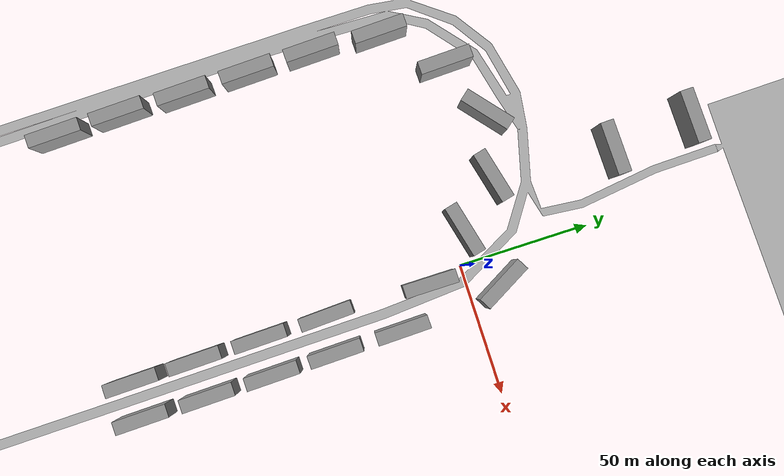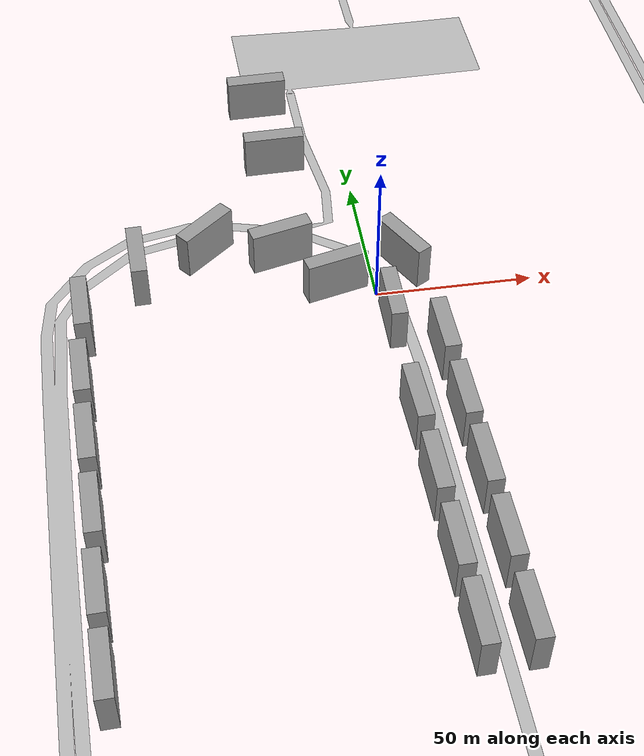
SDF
<sdf version="1.6">
 <world name="darpa_boxes">
  <model name="road">
   <link name="road_link">
    <inertial>
     <mass>1</mass>
     <inertia>
      <ixx>0.166667</ixx>
      <ixy>0</ixy>
      <ixz>0</ixz>
      <iyy>0.166667</iyy>
      <iyz>0</iyz>
      <izz>0.166667</izz>
     </inertia>
    </inertial>
    <visual name="road_visual"><geometry><mesh><uri>meshes/darpa.obj</uri></mesh></geometry></visual>
   </link>
  </model>
  <model name="box_71">
   <link name="link">
    <inertial>
     <mass>1</mass>
     <inertia>
      <ixx>0.166667</ixx>
      <ixy>0</ixy>
      <ixz>0</ixz>
      <iyy>0.166667</iyy>
      <iyz>0</iyz>
      <izz>0.166667</izz>
     </inertia>
     <pose>0 0 7.5 0 -0 0</pose>
    </inertial>
    <visual name="visual">
     <geometry><box><size>5 20 15</size></box></geometry>
     <material>
      <script><name>Gazebo/Grey</name><uri>file://media/materials/scripts/gazebo.material</uri></script>
      <shader type="vertex"><normal_map>_default_</normal_map></shader>
      <ambient>0.3 0.3 0.3 1</ambient>
      <diffuse>0.7 0.7 0.7 1</diffuse>
      <specular>0.01 0.01 0.01 1</specular>
      <emissive>0 0 0 1</emissive>
     </material>
     <pose>0 0 7.5 0 -0 0</pose>
    </visual>
    <collision name="collision">
     <pose>0 0 7.5 0 -0 0</pose>
     <geometry><box><size>5 20 15</size></box></geometry>
     <surface>
      <friction>
       <ode><mu>1</mu><mu2>1</mu2><fdir1>0 0 0</fdir1><slip1>0</slip1><slip2>0</slip2></ode>
       <torsional>
        <coefficient>1</coefficient>
        <patch_radius>0</patch_radius>
        <surface_radius>0</surface_radius>
        <use_patch_radius>1</use_patch_radius>
        <ode><slip>0</slip></ode>
       </torsional>
      </friction>
      <bounce><restitution_coefficient>0</restitution_coefficient><threshold>1e+06</threshold></bounce>
      <contact>
       <collide_without_contact>0</collide_without_contact>
       <collide_without_contact_bitmask>1</collide_without_contact_bitmask>
       <collide_bitmask>1</collide_bitmask>
       <ode>
        <soft_cfm>0</soft_cfm>
        <soft_erp>0.2</soft_erp>
        <kp>1e+13</kp>
        <kd>1</kd>
        <max_vel>0.01</max_vel>
        <min_depth>0</min_depth>
       </ode>
       <bullet>
        <split_impulse>1</split_impulse>
        <split_impulse_penetration_threshold>-0.01</split_impulse_penetration_threshold>
        <soft_cfm>0</soft_cfm>
        <soft_erp>0.2</soft_erp>
        <kp>1e+13</kp>
        <kd>1</kd>
       </bullet>
      </contact>
     </surface>
    </collision>
   </link>
   <static>1</static>
   <pose>2.62805 -13.5402 0.5 0 -0 0</pose>
  </model>
  <model name="box_70">
   <link name="link">
    <inertial>
     <mass>1</mass>
     <inertia>
      <ixx>0.166667</ixx>
      <ixy>0</ixy>
      <ixz>0</ixz>
      <iyy>0.166667</iyy>
      <iyz>0</iyz>
      <izz>0.166667</izz>
     </inertia>
     <pose>0 0 7.5 0 -0 0</pose>
    </inertial>
    <visual name="visual">
     <geometry><box><size>5 20 15</size></box></geometry>
     <material>
      <script><name>Gazebo/Grey</name><uri>file://media/materials/scripts/gazebo.material</uri></script>
      <shader type="vertex"><normal_map>_default_</normal_map></shader>
      <ambient>0.3 0.3 0.3 1</ambient>
      <diffuse>0.7 0.7 0.7 1</diffuse>
      <specular>0.01 0.01 0.01 1</specular>
      <emissive>0 0 0 1</emissive>
     </material>
     <pose>0 0 7.5 0 -0 0</pose>
    </visual>
    <collision name="collision">
     <pose>0 0 7.5 0 -0 0</pose>
     <geometry><box><size>5 20 15</size></box></geometry>
     <surface>
      <friction>
       <ode><mu>1</mu><mu2>1</mu2><fdir1>0 0 0</fdir1><slip1>0</slip1><slip2>0</slip2></ode>
       <torsional>
        <coefficient>1</coefficient>
        <patch_radius>0</patch_radius>
        <surface_radius>0</surface_radius>
        <use_patch_radius>1</use_patch_radius>
        <ode><slip>0</slip></ode>
       </torsional>
      </friction>
      <bounce><restitution_coefficient>0</restitution_coefficient><threshold>1e+06</threshold></bounce>
      <contact>
       <collide_without_contact>0</collide_without_contact>
       <collide_without_contact_bitmask>1</collide_without_contact_bitmask>
       <collide_bitmask>1</collide_bitmask>
       <ode>
        <soft_cfm>0</soft_cfm>
        <soft_erp>0.2</soft_erp>
        <kp>1e+13</kp>
        <kd>1</kd>
        <max_vel>0.01</max_vel>
        <min_depth>0</min_depth>
       </ode>
       <bullet>
        <split_impulse>1</split_impulse>
        <split_impulse_penetration_threshold>-0.01</split_impulse_penetration_threshold>
        <soft_cfm>0</soft_cfm>
        <soft_erp>0.2</soft_erp>
        <kp>1e+13</kp>
        <kd>1</kd>
       </bullet>
      </contact>
     </surface>
    </collision>
   </link>
   <static>1</static>
   <pose>2.2166 -52.9463 -0.049551 0.005043 -0.00022 0.043493</pose>
  </model>
  <model name="box_69">
   <link name="link">
    <inertial>
     <mass>1</mass>
     <inertia>
      <ixx>0.166667</ixx>
      <ixy>0</ixy>
      <ixz>0</ixz>
      <iyy>0.166667</iyy>
      <iyz>0</iyz>
      <izz>0.166667</izz>
     </inertia>
     <pose>0 0 7.5 0 -0 0</pose>
    </inertial>
    <visual name="visual">
     <geometry><box><size>5 20 15</size></box></geometry>
     <material>
      <script><name>Gazebo/Grey</name><uri>file://media/materials/scripts/gazebo.material</uri></script>
      <shader type="vertex"><normal_map>_default_</normal_map></shader>
      <ambient>0.3 0.3 0.3 1</ambient>
      <diffuse>0.7 0.7 0.7 1</diffuse>
      <specular>0.01 0.01 0.01 1</specular>
      <emissive>0 0 0 1</emissive>
     </material>
     <pose>0 0 7.5 0 -0 0</pose>
    </visual>
    <collision name="collision">
     <pose>0 0 7.5 0 -0 0</pose>
     <geometry><box><size>5 20 15</size></box></geometry>
     <surface>
      <friction>
       <ode><mu>1</mu><mu2>1</mu2><fdir1>0 0 0</fdir1><slip1>0</slip1><slip2>0</slip2></ode>
       <torsional>
        <coefficient>1</coefficient>
        <patch_radius>0</patch_radius>
        <surface_radius>0</surface_radius>
        <use_patch_radius>1</use_patch_radius>
        <ode><slip>0</slip></ode>
       </torsional>
      </friction>
      <bounce><restitution_coefficient>0</restitution_coefficient><threshold>1e+06</threshold></bounce>
      <contact>
       <collide_without_contact>0</collide_without_contact>
       <collide_without_contact_bitmask>1</collide_without_contact_bitmask>
       <collide_bitmask>1</collide_bitmask>
       <ode>
        <soft_cfm>0</soft_cfm>
        <soft_erp>0.2</soft_erp>
        <kp>1e+13</kp>
        <kd>1</kd>
        <max_vel>0.01</max_vel>
        <min_depth>0</min_depth>
       </ode>
       <bullet>
        <split_impulse>1</split_impulse>
        <split_impulse_penetration_threshold>-0.01</split_impulse_penetration_threshold>
        <soft_cfm>0</soft_cfm>
        <soft_erp>0.2</soft_erp>
        <kp>1e+13</kp>
        <kd>1</kd>
       </bullet>
      </contact>
     </surface>
    </collision>
   </link>
   <static>1</static>
   <pose>2.59574 -78.262 -0.049551 0.005047 -0.000114 0.022472</pose>
  </model>
  <model name="box_68">
   <link name="link">
    <inertial>
     <mass>1</mass>
     <inertia>
      <ixx>0.166667</ixx>
      <ixy>0</ixy>
      <ixz>0</ixz>
      <iyy>0.166667</iyy>
      <iyz>0</iyz>
      <izz>0.166667</izz>
     </inertia>
     <pose>0 0 7.5 0 -0 0</pose>
    </inertial>
    <visual name="visual">
     <geometry><box><size>5 20 15</size></box></geometry>
     <material>
      <script><name>Gazebo/Grey</name><uri>file://media/materials/scripts/gazebo.material</uri></script>
      <shader type="vertex"><normal_map>_default_</normal_map></shader>
      <ambient>0.3 0.3 0.3 1</ambient>
      <diffuse>0.7 0.7 0.7 1</diffuse>
      <specular>0.01 0.01 0.01 1</specular>
      <emissive>0 0 0 1</emissive>
     </material>
     <pose>0 0 7.5 0 -0 0</pose>
    </visual>
    <collision name="collision">
     <pose>0 0 7.5 0 -0 0</pose>
     <geometry><box><size>5 20 15</size></box></geometry>
     <surface>
      <friction>
       <ode><mu>1</mu><mu2>1</mu2><fdir1>0 0 0</fdir1><slip1>0</slip1><slip2>0</slip2></ode>
       <torsional>
        <coefficient>1</coefficient>
        <patch_radius>0</patch_radius>
        <surface_radius>0</surface_radius>
        <use_patch_radius>1</use_patch_radius>
        <ode><slip>0</slip></ode>
       </torsional>
      </friction>
      <bounce><restitution_coefficient>0</restitution_coefficient><threshold>1e+06</threshold></bounce>
      <contact>
       <collide_without_contact>0</collide_without_contact>
       <collide_without_contact_bitmask>1</collide_without_contact_bitmask>
       <collide_bitmask>1</collide_bitmask>
       <ode>
        <soft_cfm>0</soft_cfm>
        <soft_erp>0.2</soft_erp>
        <kp>1e+13</kp>
        <kd>1</kd>
        <max_vel>0.01</max_vel>
        <min_depth>0</min_depth>
       </ode>
       <bullet>
        <split_impulse>1</split_impulse>
        <split_impulse_penetration_threshold>-0.01</split_impulse_penetration_threshold>
        <soft_cfm>0</soft_cfm>
        <soft_erp>0.2</soft_erp>
        <kp>1e+13</kp>
        <kd>1</kd>
       </bullet>
      </contact>
     </surface>
    </collision>
   </link>
   <static>1</static>
   <pose>2.95301 -102.999 -0.049551 0.005047 -0.000114 0.022472</pose>
  </model>
  <model name="box_1">
   <link name="link">
    <inertial>
     <mass>1</mass>
     <inertia>
      <ixx>0.166667</ixx>
      <ixy>0</ixy>
      <ixz>0</ixz>
      <iyy>0.166667</iyy>
      <iyz>0</iyz>
      <izz>0.166667</izz>
     </inertia>
     <pose>0 0 7.5 0 -0 0</pose>
    </inertial>
    <visual name="visual">
     <geometry><box><size>5 20 15</size></box></geometry>
     <material>
      <script><name>Gazebo/Grey</name><uri>file://media/materials/scripts/gazebo.material</uri></script>
      <shader type="vertex"><normal_map>_default_</normal_map></shader>
      <ambient>0.3 0.3 0.3 1</ambient>
      <diffuse>0.7 0.7 0.7 1</diffuse>
      <specular>0.01 0.01 0.01 1</specular>
      <emissive>0 0 0 1</emissive>
     </material>
     <pose>0 0 7.5 0 -0 0</pose>
    </visual>
    <collision name="collision">
     <pose>0 0 7.5 0 -0 0</pose>
     <geometry><box><size>5 20 15</size></box></geometry>
     <surface>
      <friction>
       <ode><mu>1</mu><mu2>1</mu2><fdir1>0 0 0</fdir1><slip1>0</slip1><slip2>0</slip2></ode>
       <torsional>
        <coefficient>1</coefficient>
        <patch_radius>0</patch_radius>
        <surface_radius>0</surface_radius>
        <use_patch_radius>1</use_patch_radius>
        <ode><slip>0</slip></ode>
       </torsional>
      </friction>
      <bounce><restitution_coefficient>0</restitution_coefficient><threshold>1e+06</threshold></bounce>
      <contact>
       <collide_without_contact>0</collide_without_contact>
       <collide_without_contact_bitmask>1</collide_without_contact_bitmask>
       <collide_bitmask>1</collide_bitmask>
       <ode>
        <soft_cfm>0</soft_cfm>
        <soft_erp>0.2</soft_erp>
        <kp>1e+13</kp>
        <kd>1</kd>
        <max_vel>0.01</max_vel>
        <min_depth>0</min_depth>
       </ode>
       <bullet>
        <split_impulse>1</split_impulse>
        <split_impulse_penetration_threshold>-0.01</split_impulse_penetration_threshold>
        <soft_cfm>0</soft_cfm>
        <soft_erp>0.2</soft_erp>
        <kp>1e+13</kp>
        <kd>1</kd>
       </bullet>
      </contact>
     </surface>
    </collision>
   </link>
   <static>1</static>
   <pose>3.43621 -126.848 -0.049551 0.005047 -0.000114 0.022472</pose>
  </model>
  <model name="box_23">
   <link name="link">
    <inertial>
     <mass>1</mass>
     <inertia>
      <ixx>0.166667</ixx>
      <ixy>0</ixy>
      <ixz>0</ixz>
      <iyy>0.166667</iyy>
      <iyz>0</iyz>
      <izz>0.166667</izz>
     </inertia>
     <pose>0 0 7.5 0 -0 0</pose>
    </inertial>
    <visual name="visual">
     <geometry><box><size>5 20 15</size></box></geometry>
     <material>
      <script><name>Gazebo/Grey</name><uri>file://media/materials/scripts/gazebo.material</uri></script>
      <shader type="vertex"><normal_map>_default_</normal_map></shader>
      <ambient>0.3 0.3 0.3 1</ambient>
      <diffuse>0.7 0.7 0.7 1</diffuse>
      <specular>0.01 0.01 0.01 1</specular>
      <emissive>0 0 0 1</emissive>
     </material>
     <pose>0 0 7.5 0 -0 0</pose>
    </visual>
    <collision name="collision">
     <pose>0 0 7.5 0 -0 0</pose>
     <geometry><box><size>5 20 15</size></box></geometry>
     <surface>
      <friction>
       <ode><mu>1</mu><mu2>1</mu2><fdir1>0 0 0</fdir1><slip1>0</slip1><slip2>0</slip2></ode>
       <torsional>
        <coefficient>1</coefficient>
        <patch_radius>0</patch_radius>
        <surface_radius>0</surface_radius>
        <use_patch_radius>1</use_patch_radius>
        <ode><slip>0</slip></ode>
       </torsional>
      </friction>
      <bounce><restitution_coefficient>0</restitution_coefficient><threshold>1e+06</threshold></bounce>
      <contact>
       <collide_without_contact>0</collide_without_contact>
       <collide_without_contact_bitmask>1</collide_without_contact_bitmask>
       <collide_bitmask>1</collide_bitmask>
       <ode>
        <soft_cfm>0</soft_cfm>
        <soft_erp>0.2</soft_erp>
        <kp>1e+13</kp>
        <kd>1</kd>
        <max_vel>0.01</max_vel>
        <min_depth>0</min_depth>
       </ode>
       <bullet>
        <split_impulse>1</split_impulse>
        <split_impulse_penetration_threshold>-0.01</split_impulse_penetration_threshold>
        <soft_cfm>0</soft_cfm>
        <soft_erp>0.2</soft_erp>
        <kp>1e+13</kp>
        <kd>1</kd>
       </bullet>
      </contact>
     </surface>
    </collision>
   </link>
   <static>1</static>
   <pose>17.0274 -127.223 -0.049551 0.005047 -0.000114 0.022472</pose>
  </model>
  <model name="box_24">
   <link name="link">
    <inertial>
     <mass>1</mass>
     <inertia>
      <ixx>0.166667</ixx>
      <ixy>0</ixy>
      <ixz>0</ixz>
      <iyy>0.166667</iyy>
      <iyz>0</iyz>
      <izz>0.166667</izz>
     </inertia>
     <pose>0 0 7.5 0 -0 0</pose>
    </inertial>
    <visual name="visual">
     <geometry><box><size>5 20 15</size></box></geometry>
     <material>
      <script><name>Gazebo/Grey</name><uri>file://media/materials/scripts/gazebo.material</uri></script>
      <shader type="vertex"><normal_map>_default_</normal_map></shader>
      <ambient>0.3 0.3 0.3 1</ambient>
      <diffuse>0.7 0.7 0.7 1</diffuse>
      <specular>0.01 0.01 0.01 1</specular>
      <emissive>0 0 0 1</emissive>
     </material>
     <pose>0 0 7.5 0 -0 0</pose>
    </visual>
    <collision name="collision">
     <pose>0 0 7.5 0 -0 0</pose>
     <geometry><box><size>5 20 15</size></box></geometry>
     <surface>
      <friction>
       <ode><mu>1</mu><mu2>1</mu2><fdir1>0 0 0</fdir1><slip1>0</slip1><slip2>0</slip2></ode>
       <torsional>
        <coefficient>1</coefficient>
        <patch_radius>0</patch_radius>
        <surface_radius>0</surface_radius>
        <use_patch_radius>1</use_patch_radius>
        <ode><slip>0</slip></ode>
       </torsional>
      </friction>
      <bounce><restitution_coefficient>0</restitution_coefficient><threshold>1e+06</threshold></bounce>
      <contact>
       <collide_without_contact>0</collide_without_contact>
       <collide_without_contact_bitmask>1</collide_without_contact_bitmask>
       <collide_bitmask>1</collide_bitmask>
       <ode>
        <soft_cfm>0</soft_cfm>
        <soft_erp>0.2</soft_erp>
        <kp>1e+13</kp>
        <kd>1</kd>
        <max_vel>0.01</max_vel>
        <min_depth>0</min_depth>
       </ode>
       <bullet>
        <split_impulse>1</split_impulse>
        <split_impulse_penetration_threshold>-0.01</split_impulse_penetration_threshold>
        <soft_cfm>0</soft_cfm>
        <soft_erp>0.2</soft_erp>
        <kp>1e+13</kp>
        <kd>1</kd>
       </bullet>
      </contact>
     </surface>
    </collision>
   </link>
   <static>1</static>
   <pose>16.8933 -102.381 -0.049551 0.005047 -0.000114 0.022472</pose>
  </model>
  <model name="box_25">
   <link name="link">
    <inertial>
     <mass>1</mass>
     <inertia>
      <ixx>0.166667</ixx>
      <ixy>0</ixy>
      <ixz>0</ixz>
      <iyy>0.166667</iyy>
      <iyz>0</iyz>
      <izz>0.166667</izz>
     </inertia>
     <pose>0 0 7.5 0 -0 0</pose>
    </inertial>
    <visual name="visual">
     <geometry><box><size>5 20 15</size></box></geometry>
     <material>
      <script><name>Gazebo/Grey</name><uri>file://media/materials/scripts/gazebo.material</uri></script>
      <shader type="vertex"><normal_map>_default_</normal_map></shader>
      <ambient>0.3 0.3 0.3 1</ambient>
      <diffuse>0.7 0.7 0.7 1</diffuse>
      <specular>0.01 0.01 0.01 1</specular>
      <emissive>0 0 0 1</emissive>
     </material>
     <pose>0 0 7.5 0 -0 0</pose>
    </visual>
    <collision name="collision">
     <pose>0 0 7.5 0 -0 0</pose>
     <geometry><box><size>5 20 15</size></box></geometry>
     <surface>
      <friction>
       <ode><mu>1</mu><mu2>1</mu2><fdir1>0 0 0</fdir1><slip1>0</slip1><slip2>0</slip2></ode>
       <torsional>
        <coefficient>1</coefficient>
        <patch_radius>0</patch_radius>
        <surface_radius>0</surface_radius>
        <use_patch_radius>1</use_patch_radius>
        <ode><slip>0</slip></ode>
       </torsional>
      </friction>
      <bounce><restitution_coefficient>0</restitution_coefficient><threshold>1e+06</threshold></bounce>
      <contact>
       <collide_without_contact>0</collide_without_contact>
       <collide_without_contact_bitmask>1</collide_without_contact_bitmask>
       <collide_bitmask>1</collide_bitmask>
       <ode>
        <soft_cfm>0</soft_cfm>
        <soft_erp>0.2</soft_erp>
        <kp>1e+13</kp>
        <kd>1</kd>
        <max_vel>0.01</max_vel>
        <min_depth>0</min_depth>
       </ode>
       <bullet>
        <split_impulse>1</split_impulse>
        <split_impulse_penetration_threshold>-0.01</split_impulse_penetration_threshold>
        <soft_cfm>0</soft_cfm>
        <soft_erp>0.2</soft_erp>
        <kp>1e+13</kp>
        <kd>1</kd>
       </bullet>
      </contact>
     </surface>
    </collision>
   </link>
   <static>1</static>
   <pose>16.538 -77.9247 -0.049551 0.005047 -0.000114 0.022472</pose>
  </model>
  <model name="box_26">
   <link name="link">
    <inertial>
     <mass>1</mass>
     <inertia>
      <ixx>0.166667</ixx>
      <ixy>0</ixy>
      <ixz>0</ixz>
      <iyy>0.166667</iyy>
      <iyz>0</iyz>
      <izz>0.166667</izz>
     </inertia>
     <pose>0 0 7.5 0 -0 0</pose>
    </inertial>
    <visual name="visual">
     <geometry><box><size>5 20 15</size></box></geometry>
     <material>
      <script><name>Gazebo/Grey</name><uri>file://media/materials/scripts/gazebo.material</uri></script>
      <shader type="vertex"><normal_map>_default_</normal_map></shader>
      <ambient>0.3 0.3 0.3 1</ambient>
      <diffuse>0.7 0.7 0.7 1</diffuse>
      <specular>0.01 0.01 0.01 1</specular>
      <emissive>0 0 0 1</emissive>
     </material>
     <pose>0 0 7.5 0 -0 0</pose>
    </visual>
    <collision name="collision">
     <pose>0 0 7.5 0 -0 0</pose>
     <geometry><box><size>5 20 15</size></box></geometry>
     <surface>
      <friction>
       <ode><mu>1</mu><mu2>1</mu2><fdir1>0 0 0</fdir1><slip1>0</slip1><slip2>0</slip2></ode>
       <torsional>
        <coefficient>1</coefficient>
        <patch_radius>0</patch_radius>
        <surface_radius>0</surface_radius>
        <use_patch_radius>1</use_patch_radius>
        <ode><slip>0</slip></ode>
       </torsional>
      </friction>
      <bounce><restitution_coefficient>0</restitution_coefficient><threshold>1e+06</threshold></bounce>
      <contact>
       <collide_without_contact>0</collide_without_contact>
       <collide_without_contact_bitmask>1</collide_without_contact_bitmask>
       <collide_bitmask>1</collide_bitmask>
       <ode>
        <soft_cfm>0</soft_cfm>
        <soft_erp>0.2</soft_erp>
        <kp>1e+13</kp>
        <kd>1</kd>
        <max_vel>0.01</max_vel>
        <min_depth>0</min_depth>
       </ode>
       <bullet>
        <split_impulse>1</split_impulse>
        <split_impulse_penetration_threshold>-0.01</split_impulse_penetration_threshold>
        <soft_cfm>0</soft_cfm>
        <soft_erp>0.2</soft_erp>
        <kp>1e+13</kp>
        <kd>1</kd>
       </bullet>
      </contact>
     </surface>
    </collision>
   </link>
   <static>1</static>
   <pose>16.0227 -53.7626 -0.049551 0.005047 -0.000114 0.022472</pose>
  </model>
  <model name="box_27">
   <link name="link">
    <inertial>
     <mass>1</mass>
     <inertia>
      <ixx>0.166667</ixx>
      <ixy>0</ixy>
      <ixz>0</ixz>
      <iyy>0.166667</iyy>
      <iyz>0</iyz>
      <izz>0.166667</izz>
     </inertia>
     <pose>0 0 7.5 0 -0 0</pose>
    </inertial>
    <visual name="visual">
     <geometry><box><size>5 20 15</size></box></geometry>
     <material>
      <script><name>Gazebo/Grey</name><uri>file://media/materials/scripts/gazebo.material</uri></script>
      <shader type="vertex"><normal_map>_default_</normal_map></shader>
      <ambient>0.3 0.3 0.3 1</ambient>
      <diffuse>0.7 0.7 0.7 1</diffuse>
      <specular>0.01 0.01 0.01 1</specular>
      <emissive>0 0 0 1</emissive>
     </material>
     <pose>0 0 7.5 0 -0 0</pose>
    </visual>
    <collision name="collision">
     <pose>0 0 7.5 0 -0 0</pose>
     <geometry><box><size>5 20 15</size></box></geometry>
     <surface>
      <friction>
       <ode><mu>1</mu><mu2>1</mu2><fdir1>0 0 0</fdir1><slip1>0</slip1><slip2>0</slip2></ode>
       <torsional>
        <coefficient>1</coefficient>
        <patch_radius>0</patch_radius>
        <surface_radius>0</surface_radius>
        <use_patch_radius>1</use_patch_radius>
        <ode><slip>0</slip></ode>
       </torsional>
      </friction>
      <bounce><restitution_coefficient>0</restitution_coefficient><threshold>1e+06</threshold></bounce>
      <contact>
       <collide_without_contact>0</collide_without_contact>
       <collide_without_contact_bitmask>1</collide_without_contact_bitmask>
       <collide_bitmask>1</collide_bitmask>
       <ode>
        <soft_cfm>0</soft_cfm>
        <soft_erp>0.2</soft_erp>
        <kp>1e+13</kp>
        <kd>1</kd>
        <max_vel>0.01</max_vel>
        <min_depth>0</min_depth>
       </ode>
       <bullet>
        <split_impulse>1</split_impulse>
        <split_impulse_penetration_threshold>-0.01</split_impulse_penetration_threshold>
        <soft_cfm>0</soft_cfm>
        <soft_erp>0.2</soft_erp>
        <kp>1e+13</kp>
        <kd>1</kd>
       </bullet>
      </contact>
     </surface>
    </collision>
   </link>
   <static>1</static>
   <pose>15.5474 -28.1082 -0.049551 0.005047 -0.000114 0.022472</pose>
  </model>
  <model name="box_45">
   <link name="link">
    <inertial>
     <mass>1</mass>
     <inertia>
      <ixx>0.166667</ixx>
      <ixy>0</ixy>
      <ixz>0</ixz>
      <iyy>0.166667</iyy>
      <iyz>0</iyz>
      <izz>0.166667</izz>
     </inertia>
     <pose>0 0 7.5 0 -0 0</pose>
    </inertial>
    <visual name="visual">
     <geometry><box><size>5 20 15</size></box></geometry>
     <material>
      <script><name>Gazebo/Grey</name><uri>file://media/materials/scripts/gazebo.material</uri></script>
      <shader type="vertex"><normal_map>_default_</normal_map></shader>
      <ambient>0.3 0.3 0.3 1</ambient>
      <diffuse>0.7 0.7 0.7 1</diffuse>
      <specular>0.01 0.01 0.01 1</specular>
      <emissive>0 0 0 1</emissive>
     </material>
     <pose>0 0 7.5 0 -0 0</pose>
    </visual>
    <collision name="collision">
     <pose>0 0 7.5 0 -0 0</pose>
     <geometry><box><size>5 20 15</size></box></geometry>
     <surface>
      <friction>
       <ode><mu>1</mu><mu2>1</mu2><fdir1>0 0 0</fdir1><slip1>0</slip1><slip2>0</slip2></ode>
       <torsional>
        <coefficient>1</coefficient>
        <patch_radius>0</patch_radius>
        <surface_radius>0</surface_radius>
        <use_patch_radius>1</use_patch_radius>
        <ode><slip>0</slip></ode>
       </torsional>
      </friction>
      <bounce><restitution_coefficient>0</restitution_coefficient><threshold>1e+06</threshold></bounce>
      <contact>
       <collide_without_contact>0</collide_without_contact>
       <collide_without_contact_bitmask>1</collide_without_contact_bitmask>
       <collide_bitmask>1</collide_bitmask>
       <ode>
        <soft_cfm>0</soft_cfm>
        <soft_erp>0.2</soft_erp>
        <kp>1e+13</kp>
        <kd>1</kd>
        <max_vel>0.01</max_vel>
        <min_depth>0</min_depth>
       </ode>
       <bullet>
        <split_impulse>1</split_impulse>
        <split_impulse_penetration_threshold>-0.01</split_impulse_penetration_threshold>
        <soft_cfm>0</soft_cfm>
        <soft_erp>0.2</soft_erp>
        <kp>1e+13</kp>
        <kd>1</kd>
       </bullet>
      </contact>
     </surface>
    </collision>
   </link>
   <static>1</static>
   <pose>-91.455 -127.41 -0.049551 0.005046 -0.000145 0.028592</pose>
  </model>
  <model name="box_46">
   <link name="link">
    <inertial>
     <mass>1</mass>
     <inertia>
      <ixx>0.166667</ixx>
      <ixy>0</ixy>
      <ixz>0</ixz>
      <iyy>0.166667</iyy>
      <iyz>0</iyz>
      <izz>0.166667</izz>
     </inertia>
     <pose>0 0 7.5 0 -0 0</pose>
    </inertial>
    <visual name="visual">
     <geometry><box><size>5 20 15</size></box></geometry>
     <material>
      <script><name>Gazebo/Grey</name><uri>file://media/materials/scripts/gazebo.material</uri></script>
      <shader type="vertex"><normal_map>_default_</normal_map></shader>
      <ambient>0.3 0.3 0.3 1</ambient>
      <diffuse>0.7 0.7 0.7 1</diffuse>
      <specular>0.01 0.01 0.01 1</specular>
      <emissive>0 0 0 1</emissive>
     </material>
     <pose>0 0 7.5 0 -0 0</pose>
    </visual>
    <collision name="collision">
     <pose>0 0 7.5 0 -0 0</pose>
     <geometry><box><size>5 20 15</size></box></geometry>
     <surface>
      <friction>
       <ode><mu>1</mu><mu2>1</mu2><fdir1>0 0 0</fdir1><slip1>0</slip1><slip2>0</slip2></ode>
       <torsional>
        <coefficient>1</coefficient>
        <patch_radius>0</patch_radius>
        <surface_radius>0</surface_radius>
        <use_patch_radius>1</use_patch_radius>
        <ode><slip>0</slip></ode>
       </torsional>
      </friction>
      <bounce><restitution_coefficient>0</restitution_coefficient><threshold>1e+06</threshold></bounce>
      <contact>
       <collide_without_contact>0</collide_without_contact>
       <collide_without_contact_bitmask>1</collide_without_contact_bitmask>
       <collide_bitmask>1</collide_bitmask>
       <ode>
        <soft_cfm>0</soft_cfm>
        <soft_erp>0.2</soft_erp>
        <kp>1e+13</kp>
        <kd>1</kd>
        <max_vel>0.01</max_vel>
        <min_depth>0</min_depth>
       </ode>
       <bullet>
        <split_impulse>1</split_impulse>
        <split_impulse_penetration_threshold>-0.01</split_impulse_penetration_threshold>
        <soft_cfm>0</soft_cfm>
        <soft_erp>0.2</soft_erp>
        <kp>1e+13</kp>
        <kd>1</kd>
       </bullet>
      </contact>
     </surface>
    </collision>
   </link>
   <static>1</static>
   <pose>-92.0981 -103.287 -0.049551 0.005046 -0.000145 0.028592</pose>
  </model>
  <model name="box_47">
   <link name="link">
    <inertial>
     <mass>1</mass>
     <inertia>
      <ixx>0.166667</ixx>
      <ixy>0</ixy>
      <ixz>0</ixz>
      <iyy>0.166667</iyy>
      <iyz>0</iyz>
      <izz>0.166667</izz>
     </inertia>
     <pose>0 0 7.5 0 -0 0</pose>
    </inertial>
    <visual name="visual">
     <geometry><box><size>5 20 15</size></box></geometry>
     <material>
      <script><name>Gazebo/Grey</name><uri>file://media/materials/scripts/gazebo.material</uri></script>
      <shader type="vertex"><normal_map>_default_</normal_map></shader>
      <ambient>0.3 0.3 0.3 1</ambient>
      <diffuse>0.7 0.7 0.7 1</diffuse>
      <specular>0.01 0.01 0.01 1</specular>
      <emissive>0 0 0 1</emissive>
     </material>
     <pose>0 0 7.5 0 -0 0</pose>
    </visual>
    <collision name="collision">
     <pose>0 0 7.5 0 -0 0</pose>
     <geometry><box><size>5 20 15</size></box></geometry>
     <surface>
      <friction>
       <ode><mu>1</mu><mu2>1</mu2><fdir1>0 0 0</fdir1><slip1>0</slip1><slip2>0</slip2></ode>
       <torsional>
        <coefficient>1</coefficient>
        <patch_radius>0</patch_radius>
        <surface_radius>0</surface_radius>
        <use_patch_radius>1</use_patch_radius>
        <ode><slip>0</slip></ode>
       </torsional>
      </friction>
      <bounce><restitution_coefficient>0</restitution_coefficient><threshold>1e+06</threshold></bounce>
      <contact>
       <collide_without_contact>0</collide_without_contact>
       <collide_without_contact_bitmask>1</collide_without_contact_bitmask>
       <collide_bitmask>1</collide_bitmask>
       <ode>
        <soft_cfm>0</soft_cfm>
        <soft_erp>0.2</soft_erp>
        <kp>1e+13</kp>
        <kd>1</kd>
        <max_vel>0.01</max_vel>
        <min_depth>0</min_depth>
       </ode>
       <bullet>
        <split_impulse>1</split_impulse>
        <split_impulse_penetration_threshold>-0.01</split_impulse_penetration_threshold>
        <soft_cfm>0</soft_cfm>
        <soft_erp>0.2</soft_erp>
        <kp>1e+13</kp>
        <kd>1</kd>
       </bullet>
      </contact>
     </surface>
    </collision>
   </link>
   <static>1</static>
   <pose>-91.9292 -78.3869 -0.049551 0.005046 -0.000145 0.028592</pose>
  </model>
  <model name="box_48">
   <link name="link">
    <inertial>
     <mass>1</mass>
     <inertia>
      <ixx>0.166667</ixx>
      <ixy>0</ixy>
      <ixz>0</ixz>
      <iyy>0.166667</iyy>
      <iyz>0</iyz>
      <izz>0.166667</izz>
     </inertia>
     <pose>0 0 7.5 0 -0 0</pose>
    </inertial>
    <visual name="visual">
     <geometry><box><size>5 20 15</size></box></geometry>
     <material>
      <script><name>Gazebo/Grey</name><uri>file://media/materials/scripts/gazebo.material</uri></script>
      <shader type="vertex"><normal_map>_default_</normal_map></shader>
      <ambient>0.3 0.3 0.3 1</ambient>
      <diffuse>0.7 0.7 0.7 1</diffuse>
      <specular>0.01 0.01 0.01 1</specular>
      <emissive>0 0 0 1</emissive>
     </material>
     <pose>0 0 7.5 0 -0 0</pose>
    </visual>
    <collision name="collision">
     <pose>0 0 7.5 0 -0 0</pose>
     <geometry><box><size>5 20 15</size></box></geometry>
     <surface>
      <friction>
       <ode><mu>1</mu><mu2>1</mu2><fdir1>0 0 0</fdir1><slip1>0</slip1><slip2>0</slip2></ode>
       <torsional>
        <coefficient>1</coefficient>
        <patch_radius>0</patch_radius>
        <surface_radius>0</surface_radius>
        <use_patch_radius>1</use_patch_radius>
        <ode><slip>0</slip></ode>
       </torsional>
      </friction>
      <bounce><restitution_coefficient>0</restitution_coefficient><threshold>1e+06</threshold></bounce>
      <contact>
       <collide_without_contact>0</collide_without_contact>
       <collide_without_contact_bitmask>1</collide_without_contact_bitmask>
       <collide_bitmask>1</collide_bitmask>
       <ode>
        <soft_cfm>0</soft_cfm>
        <soft_erp>0.2</soft_erp>
        <kp>1e+13</kp>
        <kd>1</kd>
        <max_vel>0.01</max_vel>
        <min_depth>0</min_depth>
       </ode>
       <bullet>
        <split_impulse>1</split_impulse>
        <split_impulse_penetration_threshold>-0.01</split_impulse_penetration_threshold>
        <soft_cfm>0</soft_cfm>
        <soft_erp>0.2</soft_erp>
        <kp>1e+13</kp>
        <kd>1</kd>
       </bullet>
      </contact>
     </surface>
    </collision>
   </link>
   <static>1</static>
   <pose>-92.4086 -53.548 -0.049551 0.005046 -0.000145 0.028592</pose>
  </model>
  <model name="box_49">
   <link name="link">
    <inertial>
     <mass>1</mass>
     <inertia>
      <ixx>0.166667</ixx>
      <ixy>0</ixy>
      <ixz>0</ixz>
      <iyy>0.166667</iyy>
      <iyz>0</iyz>
      <izz>0.166667</izz>
     </inertia>
     <pose>0 0 7.5 0 -0 0</pose>
    </inertial>
    <visual name="visual">
     <geometry><box><size>5 20 15</size></box></geometry>
     <material>
      <script><name>Gazebo/Grey</name><uri>file://media/materials/scripts/gazebo.material</uri></script>
      <shader type="vertex"><normal_map>_default_</normal_map></shader>
      <ambient>0.3 0.3 0.3 1</ambient>
      <diffuse>0.7 0.7 0.7 1</diffuse>
      <specular>0.01 0.01 0.01 1</specular>
      <emissive>0 0 0 1</emissive>
     </material>
     <pose>0 0 7.5 0 -0 0</pose>
    </visual>
    <collision name="collision">
     <pose>0 0 7.5 0 -0 0</pose>
     <geometry><box><size>5 20 15</size></box></geometry>
     <surface>
      <friction>
       <ode><mu>1</mu><mu2>1</mu2><fdir1>0 0 0</fdir1><slip1>0</slip1><slip2>0</slip2></ode>
       <torsional>
        <coefficient>1</coefficient>
        <patch_radius>0</patch_radius>
        <surface_radius>0</surface_radius>
        <use_patch_radius>1</use_patch_radius>
        <ode><slip>0</slip></ode>
       </torsional>
      </friction>
      <bounce><restitution_coefficient>0</restitution_coefficient><threshold>1e+06</threshold></bounce>
      <contact>
       <collide_without_contact>0</collide_without_contact>
       <collide_without_contact_bitmask>1</collide_without_contact_bitmask>
       <collide_bitmask>1</collide_bitmask>
       <ode>
        <soft_cfm>0</soft_cfm>
        <soft_erp>0.2</soft_erp>
        <kp>1e+13</kp>
        <kd>1</kd>
        <max_vel>0.01</max_vel>
        <min_depth>0</min_depth>
       </ode>
       <bullet>
        <split_impulse>1</split_impulse>
        <split_impulse_penetration_threshold>-0.01</split_impulse_penetration_threshold>
        <soft_cfm>0</soft_cfm>
        <soft_erp>0.2</soft_erp>
        <kp>1e+13</kp>
        <kd>1</kd>
       </bullet>
      </contact>
     </surface>
    </collision>
   </link>
   <static>1</static>
   <pose>-92.8158 -28.7118 -0.049551 0.005046 -0.000145 0.028592</pose>
  </model>
  <model name="box_50">
   <link name="link">
    <inertial>
     <mass>1</mass>
     <inertia>
      <ixx>0.166667</ixx>
      <ixy>0</ixy>
      <ixz>0</ixz>
      <iyy>0.166667</iyy>
      <iyz>0</iyz>
      <izz>0.166667</izz>
     </inertia>
     <pose>0 0 7.5 0 -0 0</pose>
    </inertial>
    <visual name="visual">
     <geometry><box><size>5 20 15</size></box></geometry>
     <material>
      <script><name>Gazebo/Grey</name><uri>file://media/materials/scripts/gazebo.material</uri></script>
      <shader type="vertex"><normal_map>_default_</normal_map></shader>
      <ambient>0.3 0.3 0.3 1</ambient>
      <diffuse>0.7 0.7 0.7 1</diffuse>
      <specular>0.01 0.01 0.01 1</specular>
      <emissive>0 0 0 1</emissive>
     </material>
     <pose>0 0 7.5 0 -0 0</pose>
    </visual>
    <collision name="collision">
     <pose>0 0 7.5 0 -0 0</pose>
     <geometry><box><size>5 20 15</size></box></geometry>
     <surface>
      <friction>
       <ode><mu>1</mu><mu2>1</mu2><fdir1>0 0 0</fdir1><slip1>0</slip1><slip2>0</slip2></ode>
       <torsional>
        <coefficient>1</coefficient>
        <patch_radius>0</patch_radius>
        <surface_radius>0</surface_radius>
        <use_patch_radius>1</use_patch_radius>
        <ode><slip>0</slip></ode>
       </torsional>
      </friction>
      <bounce><restitution_coefficient>0</restitution_coefficient><threshold>1e+06</threshold></bounce>
      <contact>
       <collide_without_contact>0</collide_without_contact>
       <collide_without_contact_bitmask>1</collide_without_contact_bitmask>
       <collide_bitmask>1</collide_bitmask>
       <ode>
        <soft_cfm>0</soft_cfm>
        <soft_erp>0.2</soft_erp>
        <kp>1e+13</kp>
        <kd>1</kd>
        <max_vel>0.01</max_vel>
        <min_depth>0</min_depth>
       </ode>
       <bullet>
        <split_impulse>1</split_impulse>
        <split_impulse_penetration_threshold>-0.01</split_impulse_penetration_threshold>
        <soft_cfm>0</soft_cfm>
        <soft_erp>0.2</soft_erp>
        <kp>1e+13</kp>
        <kd>1</kd>
       </bullet>
      </contact>
     </surface>
    </collision>
   </link>
   <static>1</static>
   <pose>-91.7222 -2.66594 -0.049551 0.005046 -0.000145 0.028592</pose>
  </model>
  <model name="box_51">
   <link name="link">
    <inertial>
     <mass>1</mass>
     <inertia>
      <ixx>0.166667</ixx>
      <ixy>0</ixy>
      <ixz>0</ixz>
      <iyy>0.166667</iyy>
      <iyz>0</iyz>
      <izz>0.166667</izz>
     </inertia>
     <pose>0 0 7.5 0 -0 0</pose>
    </inertial>
    <visual name="visual">
     <geometry><box><size>5 20 15</size></box></geometry>
     <material>
      <script><name>Gazebo/Grey</name><uri>file://media/materials/scripts/gazebo.material</uri></script>
      <shader type="vertex"><normal_map>_default_</normal_map></shader>
      <ambient>0.3 0.3 0.3 1</ambient>
      <diffuse>0.7 0.7 0.7 1</diffuse>
      <specular>0.01 0.01 0.01 1</specular>
      <emissive>0 0 0 1</emissive>
     </material>
     <pose>0 0 7.5 0 -0 0</pose>
    </visual>
    <collision name="collision">
     <pose>0 0 7.5 0 -0 0</pose>
     <geometry><box><size>5 20 15</size></box></geometry>
     <surface>
      <friction>
       <ode><mu>1</mu><mu2>1</mu2><fdir1>0 0 0</fdir1><slip1>0</slip1><slip2>0</slip2></ode>
       <torsional>
        <coefficient>1</coefficient>
        <patch_radius>0</patch_radius>
        <surface_radius>0</surface_radius>
        <use_patch_radius>1</use_patch_radius>
        <ode><slip>0</slip></ode>
       </torsional>
      </friction>
      <bounce><restitution_coefficient>0</restitution_coefficient><threshold>1e+06</threshold></bounce>
      <contact>
       <collide_without_contact>0</collide_without_contact>
       <collide_without_contact_bitmask>1</collide_without_contact_bitmask>
       <collide_bitmask>1</collide_bitmask>
       <ode>
        <soft_cfm>0</soft_cfm>
        <soft_erp>0.2</soft_erp>
        <kp>1e+13</kp>
        <kd>1</kd>
        <max_vel>0.01</max_vel>
        <min_depth>0</min_depth>
       </ode>
       <bullet>
        <split_impulse>1</split_impulse>
        <split_impulse_penetration_threshold>-0.01</split_impulse_penetration_threshold>
        <soft_cfm>0</soft_cfm>
        <soft_erp>0.2</soft_erp>
        <kp>1e+13</kp>
        <kd>1</kd>
       </bullet>
      </contact>
     </surface>
    </collision>
   </link>
   <static>1</static>
   <pose>-73.5192 16.9039 -0.049551 0.005046 -0.000145 0.028592</pose>
  </model>
  <model name="box_52">
   <link name="link">
    <inertial>
     <mass>1</mass>
     <inertia>
      <ixx>0.166667</ixx>
      <ixy>0</ixy>
      <ixz>0</ixz>
      <iyy>0.166667</iyy>
      <iyz>0</iyz>
      <izz>0.166667</izz>
     </inertia>
     <pose>0 0 7.5 0 -0 0</pose>
    </inertial>
    <visual name="visual">
     <geometry><box><size>5 20 15</size></box></geometry>
     <material>
      <script><name>Gazebo/Grey</name><uri>file://media/materials/scripts/gazebo.material</uri></script>
      <shader type="vertex"><normal_map>_default_</normal_map></shader>
      <ambient>0.3 0.3 0.3 1</ambient>
      <diffuse>0.7 0.7 0.7 1</diffuse>
      <specular>0.01 0.01 0.01 1</specular>
      <emissive>0 0 0 1</emissive>
     </material>
     <pose>0 0 7.5 0 -0 0</pose>
    </visual>
    <collision name="collision">
     <pose>0 0 7.5 0 -0 0</pose>
     <geometry><box><size>5 20 15</size></box></geometry>
     <surface>
      <friction>
       <ode><mu>1</mu><mu2>1</mu2><fdir1>0 0 0</fdir1><slip1>0</slip1><slip2>0</slip2></ode>
       <torsional>
        <coefficient>1</coefficient>
        <patch_radius>0</patch_radius>
        <surface_radius>0</surface_radius>
        <use_patch_radius>1</use_patch_radius>
        <ode><slip>0</slip></ode>
       </torsional>
      </friction>
      <bounce><restitution_coefficient>0</restitution_coefficient><threshold>1e+06</threshold></bounce>
      <contact>
       <collide_without_contact>0</collide_without_contact>
       <collide_without_contact_bitmask>1</collide_without_contact_bitmask>
       <collide_bitmask>1</collide_bitmask>
       <ode>
        <soft_cfm>0</soft_cfm>
        <soft_erp>0.2</soft_erp>
        <kp>1e+13</kp>
        <kd>1</kd>
        <max_vel>0.01</max_vel>
        <min_depth>0</min_depth>
       </ode>
       <bullet>
        <split_impulse>1</split_impulse>
        <split_impulse_penetration_threshold>-0.01</split_impulse_penetration_threshold>
        <soft_cfm>0</soft_cfm>
        <soft_erp>0.2</soft_erp>
        <kp>1e+13</kp>
        <kd>1</kd>
       </bullet>
      </contact>
     </surface>
    </collision>
   </link>
   <static>1</static>
   <pose>-51.3617 25.8306 -0.049551 0.003235 0.003875 -0.875398</pose>
  </model>
  <model name="box_53">
   <link name="link">
    <inertial>
     <mass>1</mass>
     <inertia>
      <ixx>0.166667</ixx>
      <ixy>0</ixy>
      <ixz>0</ixz>
      <iyy>0.166667</iyy>
      <iyz>0</iyz>
      <izz>0.166667</izz>
     </inertia>
     <pose>0 0 7.5 0 -0 0</pose>
    </inertial>
    <visual name="visual">
     <geometry><box><size>5 20 15</size></box></geometry>
     <material>
      <script><name>Gazebo/Grey</name><uri>file://media/materials/scripts/gazebo.material</uri></script>
      <shader type="vertex"><normal_map>_default_</normal_map></shader>
      <ambient>0.3 0.3 0.3 1</ambient>
      <diffuse>0.7 0.7 0.7 1</diffuse>
      <specular>0.01 0.01 0.01 1</specular>
      <emissive>0 0 0 1</emissive>
     </material>
     <pose>0 0 7.5 0 -0 0</pose>
    </visual>
    <collision name="collision">
     <pose>0 0 7.5 0 -0 0</pose>
     <geometry><box><size>5 20 15</size></box></geometry>
     <surface>
      <friction>
       <ode><mu>1</mu><mu2>1</mu2><fdir1>0 0 0</fdir1><slip1>0</slip1><slip2>0</slip2></ode>
       <torsional>
        <coefficient>1</coefficient>
        <patch_radius>0</patch_radius>
        <surface_radius>0</surface_radius>
        <use_patch_radius>1</use_patch_radius>
        <ode><slip>0</slip></ode>
       </torsional>
      </friction>
      <bounce><restitution_coefficient>0</restitution_coefficient><threshold>1e+06</threshold></bounce>
      <contact>
       <collide_without_contact>0</collide_without_contact>
       <collide_without_contact_bitmask>1</collide_without_contact_bitmask>
       <collide_bitmask>1</collide_bitmask>
       <ode>
        <soft_cfm>0</soft_cfm>
        <soft_erp>0.2</soft_erp>
        <kp>1e+13</kp>
        <kd>1</kd>
        <max_vel>0.01</max_vel>
        <min_depth>0</min_depth>
       </ode>
       <bullet>
        <split_impulse>1</split_impulse>
        <split_impulse_penetration_threshold>-0.01</split_impulse_penetration_threshold>
        <soft_cfm>0</soft_cfm>
        <soft_erp>0.2</soft_erp>
        <kp>1e+13</kp>
        <kd>1</kd>
       </bullet>
      </contact>
     </surface>
    </collision>
   </link>
   <static>1</static>
   <pose>-27.7101 20.405 -0.049551 0.001197 0.004904 -1.33154</pose>
  </model>
  <model name="box_54">
   <link name="link">
    <inertial>
     <mass>1</mass>
     <inertia>
      <ixx>0.166667</ixx>
      <ixy>0</ixy>
      <ixz>0</ixz>
      <iyy>0.166667</iyy>
      <iyz>0</iyz>
      <izz>0.166667</izz>
     </inertia>
     <pose>0 0 7.5 0 -0 0</pose>
    </inertial>
    <visual name="visual">
     <geometry><box><size>5 20 15</size></box></geometry>
     <material>
      <script><name>Gazebo/Grey</name><uri>file://media/materials/scripts/gazebo.material</uri></script>
      <shader type="vertex"><normal_map>_default_</normal_map></shader>
      <ambient>0.3 0.3 0.3 1</ambient>
      <diffuse>0.7 0.7 0.7 1</diffuse>
      <specular>0.01 0.01 0.01 1</specular>
      <emissive>0 0 0 1</emissive>
     </material>
     <pose>0 0 7.5 0 -0 0</pose>
    </visual>
    <collision name="collision">
     <pose>0 0 7.5 0 -0 0</pose>
     <geometry><box><size>5 20 15</size></box></geometry>
     <surface>
      <friction>
       <ode><mu>1</mu><mu2>1</mu2><fdir1>0 0 0</fdir1><slip1>0</slip1><slip2>0</slip2></ode>
       <torsional>
        <coefficient>1</coefficient>
        <patch_radius>0</patch_radius>
        <surface_radius>0</surface_radius>
        <use_patch_radius>1</use_patch_radius>
        <ode><slip>0</slip></ode>
       </torsional>
      </friction>
      <bounce><restitution_coefficient>0</restitution_coefficient><threshold>1e+06</threshold></bounce>
      <contact>
       <collide_without_contact>0</collide_without_contact>
       <collide_without_contact_bitmask>1</collide_without_contact_bitmask>
       <collide_bitmask>1</collide_bitmask>
       <ode>
        <soft_cfm>0</soft_cfm>
        <soft_erp>0.2</soft_erp>
        <kp>1e+13</kp>
        <kd>1</kd>
        <max_vel>0.01</max_vel>
        <min_depth>0</min_depth>
       </ode>
       <bullet>
        <split_impulse>1</split_impulse>
        <split_impulse_penetration_threshold>-0.01</split_impulse_penetration_threshold>
        <soft_cfm>0</soft_cfm>
        <soft_erp>0.2</soft_erp>
        <kp>1e+13</kp>
        <kd>1</kd>
       </bullet>
      </contact>
     </surface>
    </collision>
   </link>
   <static>1</static>
   <pose>-12.2836 4.48431 -0.049551 0.001197 0.004904 -1.33154</pose>
  </model>
  <model name="box_55">
   <link name="link">
    <inertial>
     <mass>1</mass>
     <inertia>
      <ixx>0.166667</ixx>
      <ixy>0</ixy>
      <ixz>0</ixz>
      <iyy>0.166667</iyy>
      <iyz>0</iyz>
      <izz>0.166667</izz>
     </inertia>
     <pose>0 0 7.5 0 -0 0</pose>
    </inertial>
    <visual name="visual">
     <geometry><box><size>5 20 15</size></box></geometry>
     <material>
      <script><name>Gazebo/Grey</name><uri>file://media/materials/scripts/gazebo.material</uri></script>
      <shader type="vertex"><normal_map>_default_</normal_map></shader>
      <ambient>0.3 0.3 0.3 1</ambient>
      <diffuse>0.7 0.7 0.7 1</diffuse>
      <specular>0.01 0.01 0.01 1</specular>
      <emissive>0 0 0 1</emissive>
     </material>
     <pose>0 0 7.5 0 -0 0</pose>
    </visual>
    <collision name="collision">
     <pose>0 0 7.5 0 -0 0</pose>
     <geometry><box><size>5 20 15</size></box></geometry>
     <surface>
      <friction>
       <ode><mu>1</mu><mu2>1</mu2><fdir1>0 0 0</fdir1><slip1>0</slip1><slip2>0</slip2></ode>
       <torsional>
        <coefficient>1</coefficient>
        <patch_radius>0</patch_radius>
        <surface_radius>0</surface_radius>
        <use_patch_radius>1</use_patch_radius>
        <ode><slip>0</slip></ode>
       </torsional>
      </friction>
      <bounce><restitution_coefficient>0</restitution_coefficient><threshold>1e+06</threshold></bounce>
      <contact>
       <collide_without_contact>0</collide_without_contact>
       <collide_without_contact_bitmask>1</collide_without_contact_bitmask>
       <collide_bitmask>1</collide_bitmask>
       <ode>
        <soft_cfm>0</soft_cfm>
        <soft_erp>0.2</soft_erp>
        <kp>1e+13</kp>
        <kd>1</kd>
        <max_vel>0.01</max_vel>
        <min_depth>0</min_depth>
       </ode>
       <bullet>
        <split_impulse>1</split_impulse>
        <split_impulse_penetration_threshold>-0.01</split_impulse_penetration_threshold>
        <soft_cfm>0</soft_cfm>
        <soft_erp>0.2</soft_erp>
        <kp>1e+13</kp>
        <kd>1</kd>
       </bullet>
      </contact>
     </surface>
    </collision>
   </link>
   <static>1</static>
   <pose>10.7917 11.6253 -0.049551 -0.004407 0.002461 -2.6324</pose>
  </model>
  <model name="box_65">
   <link name="link">
    <inertial>
     <mass>1</mass>
     <inertia>
      <ixx>0.166667</ixx>
      <ixy>0</ixy>
      <ixz>0</ixz>
      <iyy>0.166667</iyy>
      <iyz>0</iyz>
      <izz>0.166667</izz>
     </inertia>
     <pose>0 0 7.5 0 -0 0</pose>
    </inertial>
    <visual name="visual">
     <geometry><box><size>5 20 15</size></box></geometry>
     <material>
      <script><name>Gazebo/Grey</name><uri>file://media/materials/scripts/gazebo.material</uri></script>
      <shader type="vertex"><normal_map>_default_</normal_map></shader>
      <ambient>0.3 0.3 0.3 1</ambient>
      <diffuse>0.7 0.7 0.7 1</diffuse>
      <specular>0.01 0.01 0.01 1</specular>
      <emissive>0 0 0 1</emissive>
     </material>
     <pose>0 0 7.5 0 -0 0</pose>
    </visual>
    <collision name="collision">
     <pose>0 0 7.5 0 -0 0</pose>
     <geometry><box><size>5 20 15</size></box></geometry>
     <surface>
      <friction>
       <ode><mu>1</mu><mu2>1</mu2><fdir1>0 0 0</fdir1><slip1>0</slip1><slip2>0</slip2></ode>
       <torsional>
        <coefficient>1</coefficient>
        <patch_radius>0</patch_radius>
        <surface_radius>0</surface_radius>
        <use_patch_radius>1</use_patch_radius>
        <ode><slip>0</slip></ode>
       </torsional>
      </friction>
      <bounce><restitution_coefficient>0</restitution_coefficient><threshold>1e+06</threshold></bounce>
      <contact>
       <collide_without_contact>0</collide_without_contact>
       <collide_without_contact_bitmask>1</collide_without_contact_bitmask>
       <collide_bitmask>1</collide_bitmask>
       <ode>
        <soft_cfm>0</soft_cfm>
        <soft_erp>0.2</soft_erp>
        <kp>1e+13</kp>
        <kd>1</kd>
        <max_vel>0.01</max_vel>
        <min_depth>0</min_depth>
       </ode>
       <bullet>
        <split_impulse>1</split_impulse>
        <split_impulse_penetration_threshold>-0.01</split_impulse_penetration_threshold>
        <soft_cfm>0</soft_cfm>
        <soft_erp>0.2</soft_erp>
        <kp>1e+13</kp>
        <kd>1</kd>
       </bullet>
      </contact>
     </surface>
    </collision>
   </link>
   <static>1</static>
   <pose>-26.1271 97.2617 -0.049551 8.7e-05 0.005047 -1.55363</pose>
  </model>
  <model name="box_66">
   <link name="link">
    <inertial>
     <mass>1</mass>
     <inertia>
      <ixx>0.166667</ixx>
      <ixy>0</ixy>
      <ixz>0</ixz>
      <iyy>0.166667</iyy>
      <iyz>0</iyz>
      <izz>0.166667</izz>
     </inertia>
     <pose>0 0 7.5 0 -0 0</pose>
    </inertial>
    <visual name="visual">
     <geometry><box><size>5 20 15</size></box></geometry>
     <material>
      <script><name>Gazebo/Grey</name><uri>file://media/materials/scripts/gazebo.material</uri></script>
      <shader type="vertex"><normal_map>_default_</normal_map></shader>
      <ambient>0.3 0.3 0.3 1</ambient>
      <diffuse>0.7 0.7 0.7 1</diffuse>
      <specular>0.01 0.01 0.01 1</specular>
      <emissive>0 0 0 1</emissive>
     </material>
     <pose>0 0 7.5 0 -0 0</pose>
    </visual>
    <collision name="collision">
     <pose>0 0 7.5 0 -0 0</pose>
     <geometry><box><size>5 20 15</size></box></geometry>
     <surface>
      <friction>
       <ode><mu>1</mu><mu2>1</mu2><fdir1>0 0 0</fdir1><slip1>0</slip1><slip2>0</slip2></ode>
       <torsional>
        <coefficient>1</coefficient>
        <patch_radius>0</patch_radius>
        <surface_radius>0</surface_radius>
        <use_patch_radius>1</use_patch_radius>
        <ode><slip>0</slip></ode>
       </torsional>
      </friction>
      <bounce><restitution_coefficient>0</restitution_coefficient><threshold>1e+06</threshold></bounce>
      <contact>
       <collide_without_contact>0</collide_without_contact>
       <collide_without_contact_bitmask>1</collide_without_contact_bitmask>
       <collide_bitmask>1</collide_bitmask>
       <ode>
        <soft_cfm>0</soft_cfm>
        <soft_erp>0.2</soft_erp>
        <kp>1e+13</kp>
        <kd>1</kd>
        <max_vel>0.01</max_vel>
        <min_depth>0</min_depth>
       </ode>
       <bullet>
        <split_impulse>1</split_impulse>
        <split_impulse_penetration_threshold>-0.01</split_impulse_penetration_threshold>
        <soft_cfm>0</soft_cfm>
        <soft_erp>0.2</soft_erp>
        <kp>1e+13</kp>
        <kd>1</kd>
       </bullet>
      </contact>
     </surface>
    </collision>
   </link>
   <static>1</static>
   <pose>-23.9202 65.9028 -0.049551 8.7e-05 0.005047 -1.55363</pose>
  </model>
 </world>
</sdf>
